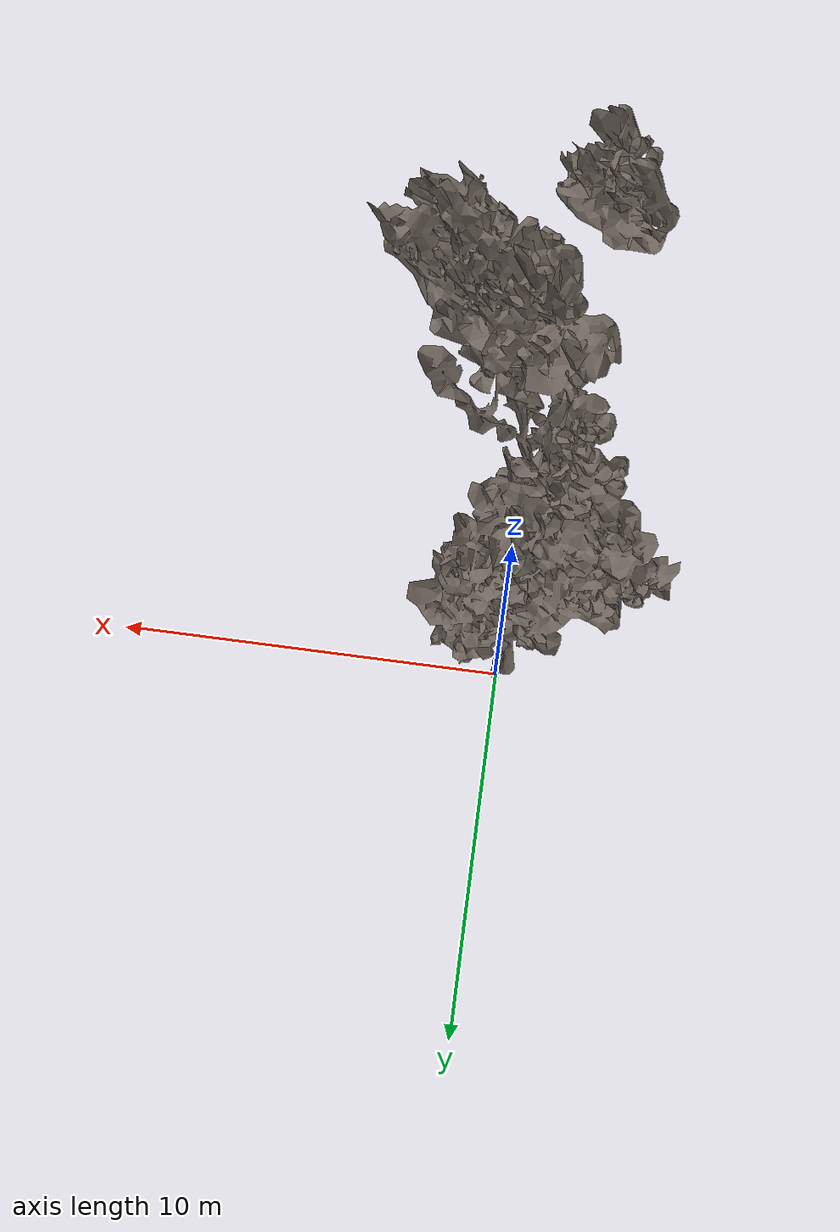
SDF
<?xml version="1.0" ?>
<sdf version="1.6">
  <model name="tree9">
    <static>true</static>
    <link name="tree_link">

      <visual name="tree_visual">
        <geometry>
          <mesh>
            <uri>model://tree9/meshes/tree_mesh.dae</uri>
          </mesh>
        </geometry>
      </visual>

      <collision name="tree_collision">
        <geometry>
          <mesh>
            <uri>model://tree9/meshes/tree_collision.stl</uri>
          </mesh>
        </geometry>
      </collision>

    </link>
  </model>
</sdf>
